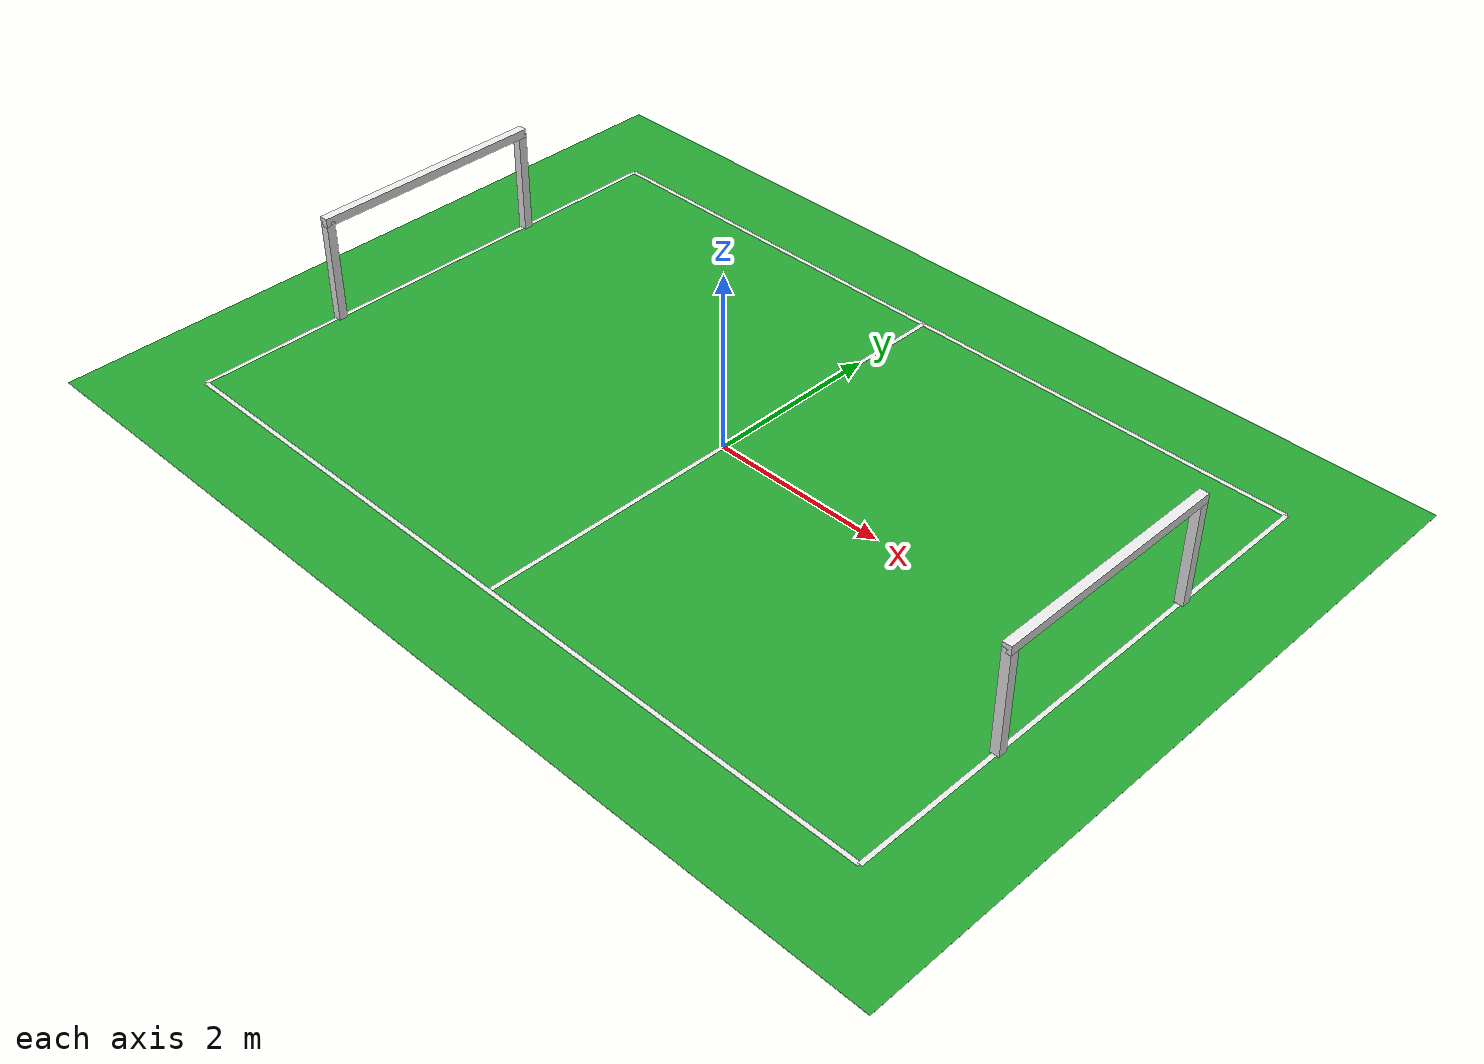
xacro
<robot xmlns:xacro="http://www.ros.org/wiki/xacro">

  <link name="field">
    <visual>
      <geometry>
        <box size="11 8 0.001"/>
      </geometry>
      <material name="green"/>
    </visual>
  </link>

  <joint name="line1_joint" type="fixed">
    <parent link="field"/>
    <child link="line1_link"/>
    <origin xyz="4.5 0 0"/>
  </joint>

  <link name="line1_link">
    <visual>
      <geometry>
        <box size="0.05 6 0.002"/>
      </geometry>
      <material name="white"/>
    </visual>
  </link>

  <joint name="line3_joint" type="fixed">
    <parent link="field"/>
    <child link="line3_link"/>
    <origin xyz="0 -3 0"/>
  </joint>

  <link name="line3_link">
    <visual>
      <geometry>
        <box size="9 0.05 0.002"/>
      </geometry>
      <material name="white"/>
    </visual>
  </link>

  <joint name="line4_joint" type="fixed">
    <parent link="field"/>
    <child link="line4_link"/>
  </joint>

  <link name="line4_link">
    <visual>
      <geometry>
        <box size="0.05 6 0.002"/>
      </geometry>
      <material name="white"/>
    </visual>
  </link>

  <joint name="line2_joint" type="fixed">
    <parent link="field"/>
    <child link="line2_link"/>
    <origin xyz="0 3 0"/>
  </joint>

  <link name="line5_link">
    <visual>
      <geometry>
        <box size="0.05 6 0.002"/>
      </geometry>
      <material name="white"/>
    </visual>
  </link>

  <joint name="line5_joint" type="fixed">
    <parent link="field"/>
    <child link="line5_link"/>
    <origin xyz="-4.5 0 0"/>
  </joint>

  <link name="line2_link">
    <visual>
      <geometry>
        <box size="9 0.05 0.002"/>
      </geometry>
      <material name="white"/>
    </visual>
  </link>

  <joint name="right_goal_post1_joint" type="fixed">
    <parent link="field"/>
    <child link="right_goal_post1_link"/>
    <origin xyz="4.5 -1.3 0.6"/>
  </joint>

  <link name="right_goal_post1_link">
    <visual>
      <geometry>
        <box size="0.10 0.10 1.2"/>
      </geometry>
      <material name="white"/>
    </visual>
  </link>

  <joint name="left_goal_post1_joint" type="fixed">
    <parent link="field"/>
    <child link="left_goal_post1_link"/>
    <origin xyz="4.5 1.3 0.6"/>
  </joint>

  <link name="left_goal_post1_link">
    <visual>
      <geometry>
        <box size="0.10 0.10 1.2"/>
      </geometry>
      <material name="white"/>
    </visual>
  </link>

  <joint name="top_goal_post1_joint" type="fixed">
    <parent link="field"/>
    <child link="top_goal_post1_link"/>
    <origin xyz="4.5 0 1.2"/>
  </joint>

  <link name="top_goal_post1_link">
    <visual>
      <geometry>
        <box size="0.10 2.7 0.10"/>
      </geometry>
      <material name="white"/>
    </visual>
  </link>

  <joint name="right_goal_post2_joint" type="fixed">
    <parent link="field"/>
    <child link="right_goal_post2_link"/>
    <origin xyz="-4.5 -1.3 0.6"/>
  </joint>

  <link name="right_goal_post2_link">
    <visual>
      <geometry>
        <box size="0.10 0.10 1.2"/>
      </geometry>
      <material name="white"/>
    </visual>
  </link>

  <joint name="left_goal_post2_joint" type="fixed">
    <parent link="field"/>
    <child link="left_goal_post2_link"/>
    <origin xyz="-4.5 1.3 0.6"/>
  </joint>

  <link name="left_goal_post2_link">
    <visual>
      <geometry>
        <box size="0.10 0.10 1.2"/>
      </geometry>
      <material name="white"/>
    </visual>
  </link>

  <joint name="top_goal_post2_joint" type="fixed">
    <parent link="field"/>
    <child link="top_goal_post2_link"/>
    <origin xyz="-4.5 0 1.2"/>
  </joint>

  <link name="top_goal_post2_link">
    <visual>
      <geometry>
        <box size="0.10 2.7 0.10"/>
      </geometry>
      <material name="white"/>
    </visual>
  </link>

</robot>
